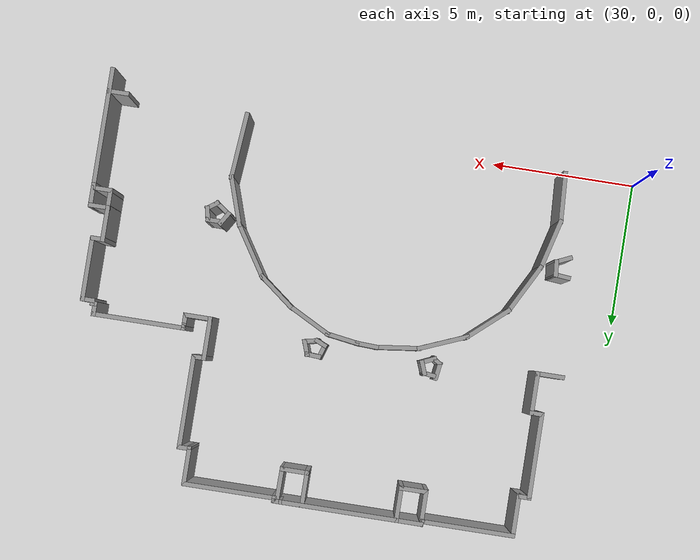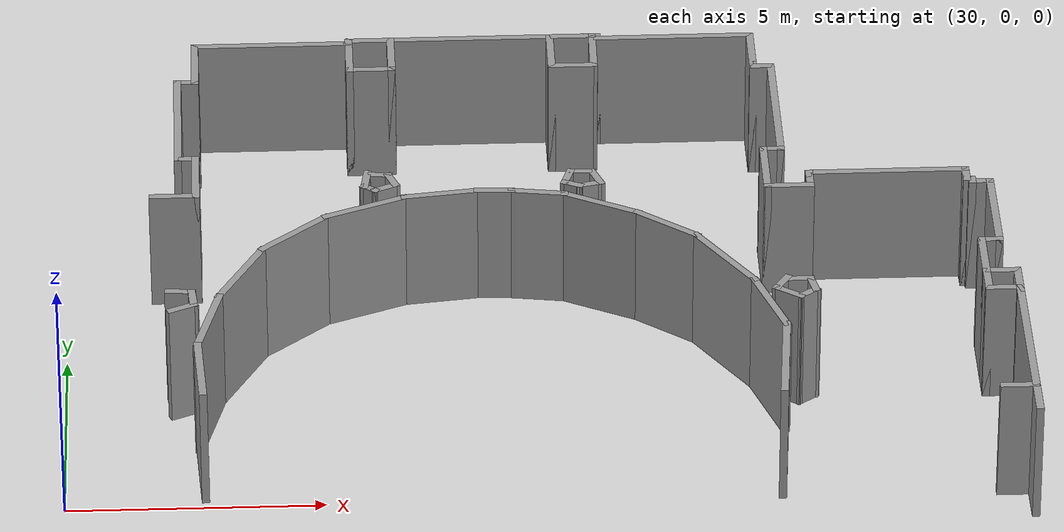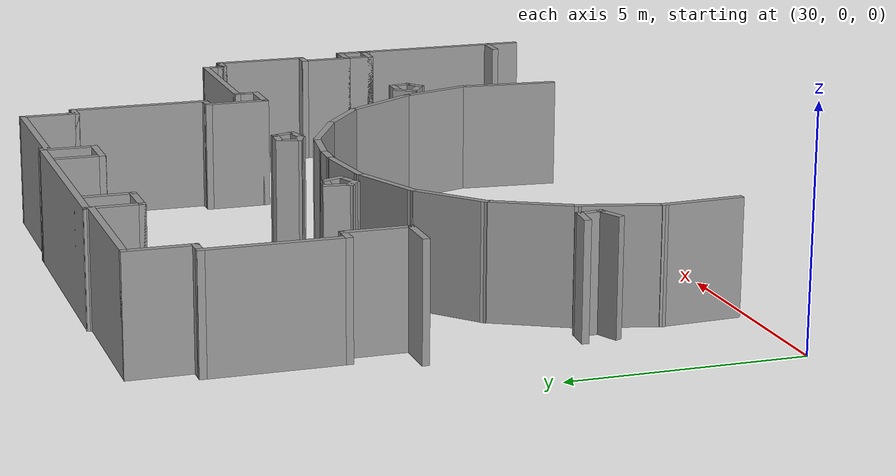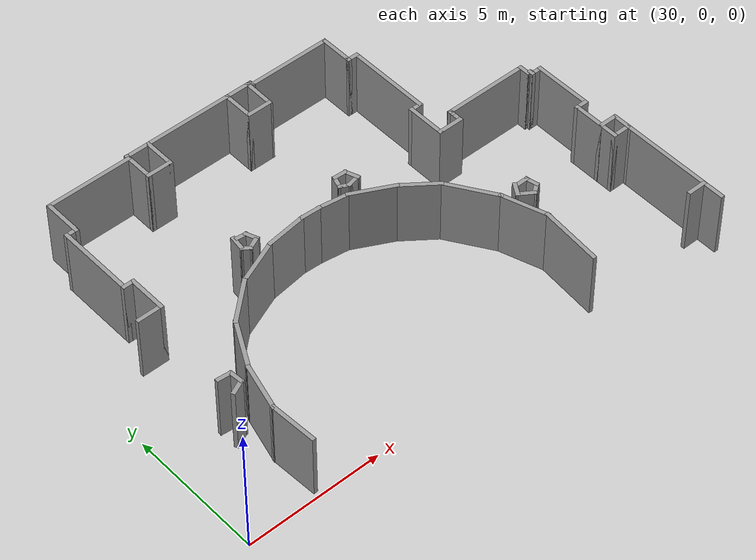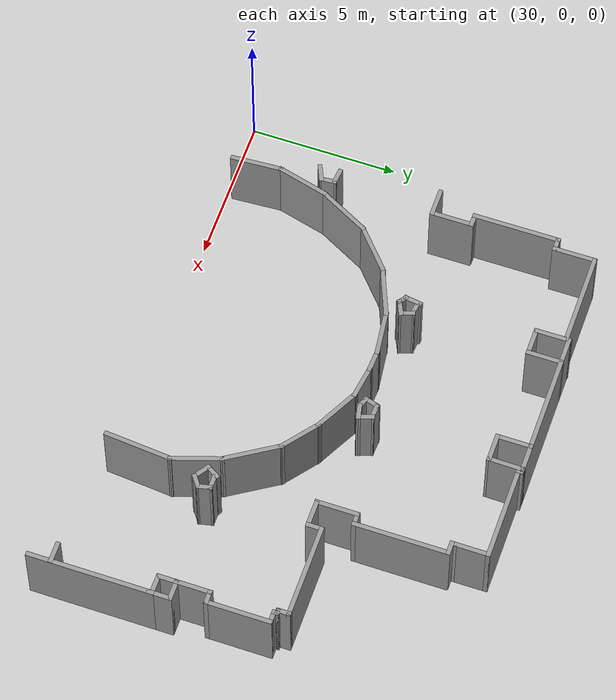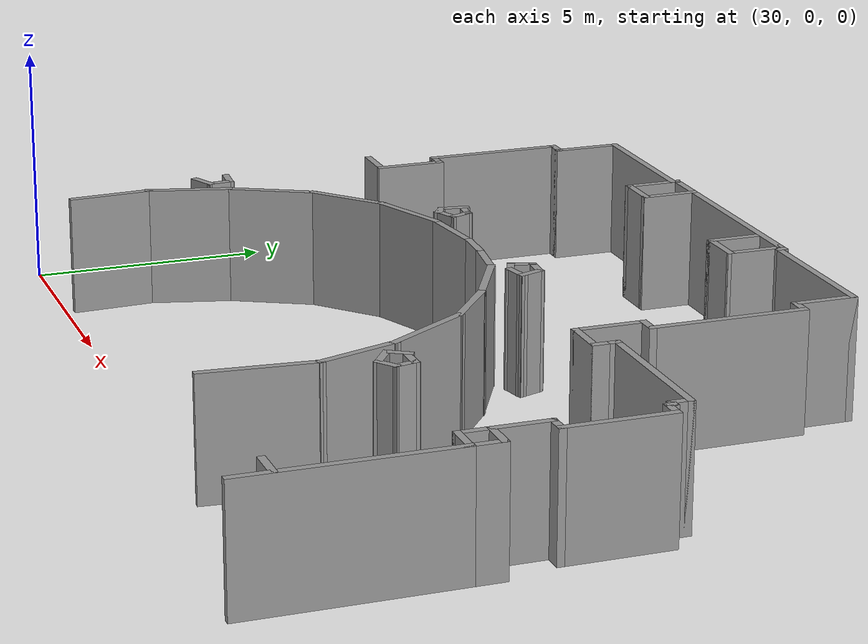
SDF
<sdf version="1.7">
 <model name="TD_n2">
  <pose>-6.42415 -9.1609 0 0 -0 0</pose>
  <link name="Wall_212">
   <collision name="Wall_212_Collision">
    <geometry><box><size>1 0.15 2.5</size></box></geometry>
    <pose>0 0 1.25 0 -0 0</pose>
   </collision>
   <visual name="Wall_212_Visual">
    <pose>0 0 1.25 0 -0 0</pose>
    <geometry><box><size>1 0.15 2.5</size></box></geometry>
    <material>
     <script><uri>file://media/materials/scripts/gazebo.material</uri><name>Gazebo/Grey</name></script>
     <ambient>1 1 1 1</ambient>
    </material>
    <meta><layer>0</layer></meta>
   </visual>
   <pose>38.5823 16.2907 0 0 -0 0</pose>
  </link>
  <link name="Wall_213">
   <collision name="Wall_213_Collision">
    <geometry><box><size>1.5 0.15 2.5</size></box></geometry>
    <pose>0 0 1.25 0 -0 0</pose>
   </collision>
   <visual name="Wall_213_Visual">
    <pose>0 0 1.25 0 -0 0</pose>
    <geometry><box><size>1.5 0.15 2.5</size></box></geometry>
    <material>
     <script><uri>file://media/materials/scripts/gazebo.material</uri><name>Gazebo/Grey</name></script>
     <ambient>1 1 1 1</ambient>
    </material>
    <meta><layer>0</layer></meta>
   </visual>
   <pose>39.0074 16.9657 0 0 -0 1.5708</pose>
  </link>
  <link name="Wall_214">
   <collision name="Wall_214_Collision">
    <geometry><box><size>0.5 0.15 2.5</size></box></geometry>
    <pose>0 0 1.25 0 -0 0</pose>
   </collision>
   <visual name="Wall_214_Visual">
    <pose>0 0 1.25 0 -0 0</pose>
    <geometry><box><size>0.5 0.15 2.5</size></box></geometry>
    <material>
     <script><uri>file://media/materials/scripts/gazebo.material</uri><name>Gazebo/Grey</name></script>
     <ambient>1 1 1 1</ambient>
    </material>
    <meta><layer>0</layer></meta>
   </visual>
   <pose>38.8323 17.6407 0 0 -0 3.14159</pose>
  </link>
  <link name="Wall_215">
   <collision name="Wall_215_Collision">
    <geometry><box><size>3 0.15 2.5</size></box></geometry>
    <pose>0 0 1.25 0 -0 0</pose>
   </collision>
   <visual name="Wall_215_Visual">
    <pose>0 0 1.25 0 -0 0</pose>
    <geometry><box><size>3 0.15 2.5</size></box></geometry>
    <material>
     <script><uri>file://media/materials/scripts/gazebo.material</uri><name>Gazebo/Grey</name></script>
     <ambient>1 1 1 1</ambient>
    </material>
    <meta><layer>0</layer></meta>
   </visual>
   <pose>38.6574 19.0657 0 0 -0 1.5708</pose>
  </link>
  <link name="Wall_216">
   <collision name="Wall_216_Collision">
    <geometry><box><size>0.5 0.15 2.5</size></box></geometry>
    <pose>0 0 1.25 0 -0 0</pose>
   </collision>
   <visual name="Wall_216_Visual">
    <pose>0 0 1.25 0 -0 0</pose>
    <geometry><box><size>0.5 0.15 2.5</size></box></geometry>
    <material>
     <script><uri>file://media/materials/scripts/gazebo.material</uri><name>Gazebo/Grey</name></script>
     <ambient>1 1 1 1</ambient>
    </material>
    <meta><layer>0</layer></meta>
   </visual>
   <pose>38.8323 20.4907 0 0 -0 0</pose>
  </link>
  <link name="Wall_217">
   <collision name="Wall_217_Collision">
    <geometry><box><size>1.5 0.15 2.5</size></box></geometry>
    <pose>0 0 1.25 0 -0 0</pose>
   </collision>
   <visual name="Wall_217_Visual">
    <pose>0 0 1.25 0 -0 0</pose>
    <geometry><box><size>1.5 0.15 2.5</size></box></geometry>
    <material>
     <script><uri>file://media/materials/scripts/gazebo.material</uri><name>Gazebo/Grey</name></script>
     <ambient>1 1 1 1</ambient>
    </material>
    <meta><layer>0</layer></meta>
   </visual>
   <pose>39.0074 21.1657 0 0 -0 1.5708</pose>
  </link>
  <link name="Wall_218">
   <collision name="Wall_218_Collision">
    <geometry><box><size>3.25 0.15 2.5</size></box></geometry>
    <pose>0 0 1.25 0 -0 0</pose>
   </collision>
   <visual name="Wall_218_Visual">
    <pose>0 0 1.25 0 -0 0</pose>
    <geometry><box><size>3.25 0.15 2.5</size></box></geometry>
    <material>
     <script><uri>file://media/materials/scripts/gazebo.material</uri><name>Gazebo/Grey</name></script>
     <ambient>1 1 1 1</ambient>
    </material>
    <meta><layer>0</layer></meta>
   </visual>
   <pose>40.5574 21.8407 0 0 -0 0</pose>
  </link>
  <link name="Wall_219">
   <collision name="Wall_219_Collision">
    <geometry><box><size>0.25 0.15 2.5</size></box></geometry>
    <pose>0 0 1.25 0 -0 0</pose>
   </collision>
   <visual name="Wall_219_Visual">
    <pose>0 0 1.25 0 -0 0</pose>
    <geometry><box><size>0.25 0.15 2.5</size></box></geometry>
    <material>
     <script><uri>file://media/materials/scripts/gazebo.material</uri><name>Gazebo/Grey</name></script>
     <ambient>1 1 1 1</ambient>
    </material>
    <meta><layer>0</layer></meta>
   </visual>
   <pose>42.1203 21.889 0 0 -0 1.309</pose>
  </link>
  <link name="Wall_220">
   <collision name="Wall_220_Collision">
    <geometry><box><size>5 0.15 2.5</size></box></geometry>
    <pose>0 0 1.25 0 -0 0</pose>
   </collision>
   <visual name="Wall_220_Visual">
    <pose>0 0 1.25 0 -0 0</pose>
    <geometry><box><size>5 0.15 2.5</size></box></geometry>
    <material>
     <script><uri>file://media/materials/scripts/gazebo.material</uri><name>Gazebo/Grey</name></script>
     <ambient>1 1 1 1</ambient>
    </material>
    <meta><layer>0</layer></meta>
   </visual>
   <pose>44.5582 21.9373 0 0 -0 0</pose>
  </link>
  <link name="Wall_221">
   <collision name="Wall_221_Collision">
    <geometry><box><size>0.25 0.15 2.5</size></box></geometry>
    <pose>0 0 1.25 0 -0 0</pose>
   </collision>
   <visual name="Wall_221_Visual">
    <pose>0 0 1.25 0 -0 0</pose>
    <geometry><box><size>0.25 0.15 2.5</size></box></geometry>
    <material>
     <script><uri>file://media/materials/scripts/gazebo.material</uri><name>Gazebo/Grey</name></script>
     <ambient>1 1 1 1</ambient>
    </material>
    <meta><layer>0</layer></meta>
   </visual>
   <pose>47.0332 21.9373 0 0 -0 0</pose>
  </link>
  <link name="Wall_222">
   <collision name="Wall_222_Collision">
    <geometry><box><size>0.25 0.15 2.5</size></box></geometry>
    <pose>0 0 1.25 0 -0 0</pose>
   </collision>
   <visual name="Wall_222_Visual">
    <pose>0 0 1.25 0 -0 0</pose>
    <geometry><box><size>0.25 0.15 2.5</size></box></geometry>
    <material>
     <script><uri>file://media/materials/scripts/gazebo.material</uri><name>Gazebo/Grey</name></script>
     <ambient>1 1 1 1</ambient>
    </material>
    <meta><layer>0</layer></meta>
   </visual>
   <pose>47.1332 21.9373 0 0 -0 0</pose>
  </link>
  <link name="Wall_223">
   <collision name="Wall_223_Collision">
    <geometry><box><size>0.25 0.15 2.5</size></box></geometry>
    <pose>0 0 1.25 0 -0 0</pose>
   </collision>
   <visual name="Wall_223_Visual">
    <pose>0 0 1.25 0 -0 0</pose>
    <geometry><box><size>0.25 0.15 2.5</size></box></geometry>
    <material>
     <script><uri>file://media/materials/scripts/gazebo.material</uri><name>Gazebo/Grey</name></script>
     <ambient>1 1 1 1</ambient>
    </material>
    <meta><layer>0</layer></meta>
   </visual>
   <pose>47.1832 21.8873 0 0 -0 -1.5708</pose>
  </link>
  <link name="Wall_224">
   <collision name="Wall_224_Collision">
    <geometry><box><size>3.25 0.15 2.5</size></box></geometry>
    <pose>0 0 1.25 0 -0 0</pose>
   </collision>
   <visual name="Wall_224_Visual">
    <pose>0 0 1.25 0 -0 0</pose>
    <geometry><box><size>3.25 0.15 2.5</size></box></geometry>
    <material>
     <script><uri>file://media/materials/scripts/gazebo.material</uri><name>Gazebo/Grey</name></script>
     <ambient>1 1 1 1</ambient>
    </material>
    <meta><layer>0</layer></meta>
   </visual>
   <pose>48.7332 21.8373 0 0 -0 0</pose>
  </link>
  <link name="Wall_225">
   <collision name="Wall_225_Collision">
    <geometry><box><size>1.25 0.15 2.5</size></box></geometry>
    <pose>0 0 1.25 0 -0 0</pose>
   </collision>
   <visual name="Wall_225_Visual">
    <pose>0 0 1.25 0 -0 0</pose>
    <geometry><box><size>1.25 0.15 2.5</size></box></geometry>
    <material>
     <script><uri>file://media/materials/scripts/gazebo.material</uri><name>Gazebo/Grey</name></script>
     <ambient>1 1 1 1</ambient>
    </material>
    <meta><layer>0</layer></meta>
   </visual>
   <pose>50.2832 21.2873 0 0 -0 -1.5708</pose>
  </link>
  <link name="Wall_226">
   <collision name="Wall_226_Collision">
    <geometry><box><size>0.25 0.15 2.5</size></box></geometry>
    <pose>0 0 1.25 0 -0 0</pose>
   </collision>
   <visual name="Wall_226_Visual">
    <pose>0 0 1.25 0 -0 0</pose>
    <geometry><box><size>0.25 0.15 2.5</size></box></geometry>
    <material>
     <script><uri>file://media/materials/scripts/gazebo.material</uri><name>Gazebo/Grey</name></script>
     <ambient>1 1 1 1</ambient>
    </material>
    <meta><layer>0</layer></meta>
   </visual>
   <pose>50.2832 20.6873 0 0 -0 -1.5708</pose>
  </link>
  <link name="Wall_227">
   <collision name="Wall_227_Collision">
    <geometry><box><size>0.5 0.15 2.5</size></box></geometry>
    <pose>0 0 1.25 0 -0 0</pose>
   </collision>
   <visual name="Wall_227_Visual">
    <pose>0 0 1.25 0 -0 0</pose>
    <geometry><box><size>0.5 0.15 2.5</size></box></geometry>
    <material>
     <script><uri>file://media/materials/scripts/gazebo.material</uri><name>Gazebo/Grey</name></script>
     <ambient>1 1 1 1</ambient>
    </material>
    <meta><layer>0</layer></meta>
   </visual>
   <pose>50.4582 20.6373 0 0 -0 0</pose>
  </link>
  <link name="Wall_228">
   <collision name="Wall_228_Collision">
    <geometry><box><size>3.25 0.15 2.5</size></box></geometry>
    <pose>0 0 1.25 0 -0 0</pose>
   </collision>
   <visual name="Wall_228_Visual">
    <pose>0 0 1.25 0 -0 0</pose>
    <geometry><box><size>3.25 0.15 2.5</size></box></geometry>
    <material>
     <script><uri>file://media/materials/scripts/gazebo.material</uri><name>Gazebo/Grey</name></script>
     <ambient>1 1 1 1</ambient>
    </material>
    <meta><layer>0</layer></meta>
   </visual>
   <pose>50.6332 19.0873 0 0 -0 -1.5708</pose>
  </link>
  <link name="Wall_229">
   <collision name="Wall_229_Collision">
    <geometry><box><size>0.5 0.15 2.5</size></box></geometry>
    <pose>0 0 1.25 0 -0 0</pose>
   </collision>
   <visual name="Wall_229_Visual">
    <pose>0 0 1.25 0 -0 0</pose>
    <geometry><box><size>0.5 0.15 2.5</size></box></geometry>
    <material>
     <script><uri>file://media/materials/scripts/gazebo.material</uri><name>Gazebo/Grey</name></script>
     <ambient>1 1 1 1</ambient>
    </material>
    <meta><layer>0</layer></meta>
   </visual>
   <pose>50.4582 17.5373 0 0 -0 3.14159</pose>
  </link>
  <link name="Wall_230">
   <collision name="Wall_230_Collision">
    <geometry><box><size>1.5 0.15 2.5</size></box></geometry>
    <pose>0 0 1.25 0 -0 0</pose>
   </collision>
   <visual name="Wall_230_Visual">
    <pose>0 0 1.25 0 -0 0</pose>
    <geometry><box><size>1.5 0.15 2.5</size></box></geometry>
    <material>
     <script><uri>file://media/materials/scripts/gazebo.material</uri><name>Gazebo/Grey</name></script>
     <ambient>1 1 1 1</ambient>
    </material>
    <meta><layer>0</layer></meta>
   </visual>
   <pose>50.2832 16.8623 0 0 -0 -1.5708</pose>
  </link>
  <link name="Wall_231">
   <collision name="Wall_231_Collision">
    <geometry><box><size>1 0.15 2.5</size></box></geometry>
    <pose>0 0 1.25 0 -0 0</pose>
   </collision>
   <visual name="Wall_231_Visual">
    <pose>0 0 1.25 0 -0 0</pose>
    <geometry><box><size>1 0.15 2.5</size></box></geometry>
    <material>
     <script><uri>file://media/materials/scripts/gazebo.material</uri><name>Gazebo/Grey</name></script>
     <ambient>1 1 1 1</ambient>
    </material>
    <meta><layer>0</layer></meta>
   </visual>
   <pose>50.7082 16.1873 0 0 -0 0</pose>
  </link>
  <link name="Wall_232">
   <collision name="Wall_232_Collision">
    <geometry><box><size>0.5 0.15 2.5</size></box></geometry>
    <pose>0 0 1.25 0 -0 0</pose>
   </collision>
   <visual name="Wall_232_Visual">
    <pose>0 0 1.25 0 -0 0</pose>
    <geometry><box><size>0.5 0.15 2.5</size></box></geometry>
    <material>
     <script><uri>file://media/materials/scripts/gazebo.material</uri><name>Gazebo/Grey</name></script>
     <ambient>1 1 1 1</ambient>
    </material>
    <meta><layer>0</layer></meta>
   </visual>
   <pose>51.1332 16.3623 0 0 -0 1.5708</pose>
  </link>
  <link name="Wall_233">
   <collision name="Wall_233_Collision">
    <geometry><box><size>0.25 0.15 2.5</size></box></geometry>
    <pose>0 0 1.25 0 -0 0</pose>
   </collision>
   <visual name="Wall_233_Visual">
    <pose>0 0 1.25 0 -0 0</pose>
    <geometry><box><size>0.25 0.15 2.5</size></box></geometry>
    <material>
     <script><uri>file://media/materials/scripts/gazebo.material</uri><name>Gazebo/Grey</name></script>
     <ambient>1 1 1 1</ambient>
    </material>
    <meta><layer>0</layer></meta>
   </visual>
   <pose>51.1332 16.5873 0 0 -0 1.5708</pose>
  </link>
  <link name="Wall_234">
   <collision name="Wall_234_Collision">
    <geometry><box><size>3.25 0.15 2.5</size></box></geometry>
    <pose>0 0 1.25 0 -0 0</pose>
   </collision>
   <visual name="Wall_234_Visual">
    <pose>0 0 1.25 0 -0 0</pose>
    <geometry><box><size>3.25 0.15 2.5</size></box></geometry>
    <material>
     <script><uri>file://media/materials/scripts/gazebo.material</uri><name>Gazebo/Grey</name></script>
     <ambient>1 1 1 1</ambient>
    </material>
    <meta><layer>0</layer></meta>
   </visual>
   <pose>52.6832 16.6373 0 0 -0 0</pose>
  </link>
  <link name="Wall_235">
   <collision name="Wall_235_Collision">
    <geometry><box><size>0.5 0.15 2.5</size></box></geometry>
    <pose>0 0 1.25 0 -0 0</pose>
   </collision>
   <visual name="Wall_235_Visual">
    <pose>0 0 1.25 0 -0 0</pose>
    <geometry><box><size>0.5 0.15 2.5</size></box></geometry>
    <material>
     <script><uri>file://media/materials/scripts/gazebo.material</uri><name>Gazebo/Grey</name></script>
     <ambient>1 1 1 1</ambient>
    </material>
    <meta><layer>0</layer></meta>
   </visual>
   <pose>54.2332 16.4623 0 0 -0 -1.5708</pose>
  </link>
  <link name="Wall_236">
   <collision name="Wall_236_Collision">
    <geometry><box><size>0.25 0.15 2.5</size></box></geometry>
    <pose>0 0 1.25 0 -0 0</pose>
   </collision>
   <visual name="Wall_236_Visual">
    <pose>0 0 1.25 0 -0 0</pose>
    <geometry><box><size>0.25 0.15 2.5</size></box></geometry>
    <material>
     <script><uri>file://media/materials/scripts/gazebo.material</uri><name>Gazebo/Grey</name></script>
     <ambient>1 1 1 1</ambient>
    </material>
    <meta><layer>0</layer></meta>
   </visual>
   <pose>54.2832 16.2873 0 0 -0 0</pose>
  </link>
  <link name="Wall_237">
   <collision name="Wall_237_Collision">
    <geometry><box><size>0.25 0.15 2.5</size></box></geometry>
    <pose>0 0 1.25 0 -0 0</pose>
   </collision>
   <visual name="Wall_237_Visual">
    <pose>0 0 1.25 0 -0 0</pose>
    <geometry><box><size>0.25 0.15 2.5</size></box></geometry>
    <material>
     <script><uri>file://media/materials/scripts/gazebo.material</uri><name>Gazebo/Grey</name></script>
     <ambient>1 1 1 1</ambient>
    </material>
    <meta><layer>0</layer></meta>
   </visual>
   <pose>54.3332 16.2373 0 0 -0 -1.5708</pose>
  </link>
  <link name="Wall_238">
   <collision name="Wall_238_Collision">
    <geometry><box><size>0.5 0.15 2.5</size></box></geometry>
    <pose>0 0 1.25 0 -0 0</pose>
   </collision>
   <visual name="Wall_238_Visual">
    <pose>0 0 1.25 0 -0 0</pose>
    <geometry><box><size>0.5 0.15 2.5</size></box></geometry>
    <material>
     <script><uri>file://media/materials/scripts/gazebo.material</uri><name>Gazebo/Grey</name></script>
     <ambient>1 1 1 1</ambient>
    </material>
    <meta><layer>0</layer></meta>
   </visual>
   <pose>54.5082 16.1873 0 0 -0 0</pose>
  </link>
  <link name="Wall_239">
   <collision name="Wall_239_Collision">
    <geometry><box><size>2.25 0.15 2.5</size></box></geometry>
    <pose>0 0 1.25 0 -0 0</pose>
   </collision>
   <visual name="Wall_239_Visual">
    <pose>0 0 1.25 0 -0 0</pose>
    <geometry><box><size>2.25 0.15 2.5</size></box></geometry>
    <material>
     <script><uri>file://media/materials/scripts/gazebo.material</uri><name>Gazebo/Grey</name></script>
     <ambient>1 1 1 1</ambient>
    </material>
    <meta><layer>0</layer></meta>
   </visual>
   <pose>54.6832 15.1373 0 0 -0 -1.5708</pose>
  </link>
  <link name="Wall_240">
   <collision name="Wall_240_Collision">
    <geometry><box><size>0.5 0.15 2.5</size></box></geometry>
    <pose>0 0 1.25 0 -0 0</pose>
   </collision>
   <visual name="Wall_240_Visual">
    <pose>0 0 1.25 0 -0 0</pose>
    <geometry><box><size>0.5 0.15 2.5</size></box></geometry>
    <material>
     <script><uri>file://media/materials/scripts/gazebo.material</uri><name>Gazebo/Grey</name></script>
     <ambient>1 1 1 1</ambient>
    </material>
    <meta><layer>0</layer></meta>
   </visual>
   <pose>54.5082 14.0873 0 0 -0 3.14159</pose>
  </link>
  <link name="Wall_242">
   <collision name="Wall_242_Collision">
    <geometry><box><size>1.25 0.15 2.5</size></box></geometry>
    <pose>0 0 1.25 0 -0 0</pose>
   </collision>
   <visual name="Wall_242_Visual">
    <pose>0 0 1.25 0 -0 0</pose>
    <geometry><box><size>1.25 0.15 2.5</size></box></geometry>
    <material>
     <script><uri>file://media/materials/scripts/gazebo.material</uri><name>Gazebo/Grey</name></script>
     <ambient>1 1 1 1</ambient>
    </material>
    <meta><layer>0</layer></meta>
   </visual>
   <pose>54.3332 13.5373 0 0 -0 -1.5708</pose>
  </link>
  <link name="Wall_243">
   <collision name="Wall_243_Collision">
    <geometry><box><size>0.75 0.15 2.5</size></box></geometry>
    <pose>0 0 1.25 0 -0 0</pose>
   </collision>
   <visual name="Wall_243_Visual">
    <pose>0 0 1.25 0 -0 0</pose>
    <geometry><box><size>0.75 0.15 2.5</size></box></geometry>
    <material>
     <script><uri>file://media/materials/scripts/gazebo.material</uri><name>Gazebo/Grey</name></script>
     <ambient>1 1 1 1</ambient>
    </material>
    <meta><layer>0</layer></meta>
   </visual>
   <pose>54.6332 12.9873 0 0 -0 0</pose>
  </link>
  <link name="Wall_244">
   <collision name="Wall_244_Collision">
    <geometry><box><size>0.75 0.15 2.5</size></box></geometry>
    <pose>0 0 1.25 0 -0 0</pose>
   </collision>
   <visual name="Wall_244_Visual">
    <pose>0 0 1.25 0 -0 0</pose>
    <geometry><box><size>0.75 0.15 2.5</size></box></geometry>
    <material>
     <script><uri>file://media/materials/scripts/gazebo.material</uri><name>Gazebo/Grey</name></script>
     <ambient>1 1 1 1</ambient>
    </material>
    <meta><layer>0</layer></meta>
   </visual>
   <pose>54.9332 12.6873 0 0 -0 -1.5708</pose>
  </link>
  <link name="Wall_245">
   <collision name="Wall_245_Collision">
    <geometry><box><size>0.25 0.15 2.5</size></box></geometry>
    <pose>0 0 1.25 0 -0 0</pose>
   </collision>
   <visual name="Wall_245_Visual">
    <pose>0 0 1.25 0 -0 0</pose>
    <geometry><box><size>0.25 0.15 2.5</size></box></geometry>
    <material>
     <script><uri>file://media/materials/scripts/gazebo.material</uri><name>Gazebo/Grey</name></script>
     <ambient>1 1 1 1</ambient>
    </material>
    <meta><layer>0</layer></meta>
   </visual>
   <pose>54.9332 12.3373 0 0 -0 -1.5708</pose>
  </link>
  <link name="Wall_247">
   <collision name="Wall_247_Collision">
    <geometry><box><size>4.25 0.15 2.5</size></box></geometry>
    <pose>0 0 1.25 0 -0 0</pose>
   </collision>
   <visual name="Wall_247_Visual">
    <pose>0 0 1.25 0 -0 0</pose>
    <geometry><box><size>4.25 0.15 2.5</size></box></geometry>
    <material>
     <script><uri>file://media/materials/scripts/gazebo.material</uri><name>Gazebo/Grey</name></script>
     <ambient>1 1 1 1</ambient>
    </material>
    <meta><layer>0</layer></meta>
   </visual>
   <pose>54.9332 10.3373 0 0 -0 -1.5708</pose>
  </link>
  <link name="Wall_496">
   <collision name="Wall_496_Collision">
    <geometry><box><size>1.25 0.15 2.5</size></box></geometry>
    <pose>0 0 1.25 0 -0 0</pose>
   </collision>
   <visual name="Wall_496_Visual">
    <pose>0 0 1.25 0 -0 0</pose>
    <geometry><box><size>1.25 0.15 2.5</size></box></geometry>
    <material>
     <script><uri>file://media/materials/scripts/gazebo.material</uri><name>Gazebo/Grey</name></script>
     <ambient>1 1 1 1</ambient>
    </material>
    <meta><layer>0</layer></meta>
   </visual>
   <pose>42.1332 21.3873 0 0 -0 -1.5708</pose>
  </link>
  <link name="Wall_497">
   <collision name="Wall_497_Collision">
    <geometry><box><size>1 0.15 2.5</size></box></geometry>
    <pose>0 0 1.25 0 -0 0</pose>
   </collision>
   <visual name="Wall_497_Visual">
    <pose>0 0 1.25 0 -0 0</pose>
    <geometry><box><size>1 0.15 2.5</size></box></geometry>
    <material>
     <script><uri>file://media/materials/scripts/gazebo.material</uri><name>Gazebo/Grey</name></script>
     <ambient>1 1 1 1</ambient>
    </material>
    <meta><layer>0</layer></meta>
   </visual>
   <pose>42.5582 20.8373 0 0 -0 0</pose>
  </link>
  <link name="Wall_498">
   <collision name="Wall_498_Collision">
    <geometry><box><size>1.25 0.15 2.5</size></box></geometry>
    <pose>0 0 1.25 0 -0 0</pose>
   </collision>
   <visual name="Wall_498_Visual">
    <pose>0 0 1.25 0 -0 0</pose>
    <geometry><box><size>1.25 0.15 2.5</size></box></geometry>
    <material>
     <script><uri>file://media/materials/scripts/gazebo.material</uri><name>Gazebo/Grey</name></script>
     <ambient>1 1 1 1</ambient>
    </material>
    <meta><layer>0</layer></meta>
   </visual>
   <pose>42.9832 21.3873 0 0 -0 1.5708</pose>
  </link>
  <link name="Wall_500">
   <collision name="Wall_500_Collision">
    <geometry><box><size>1.25 0.15 2.5</size></box></geometry>
    <pose>0 0 1.25 0 -0 0</pose>
   </collision>
   <visual name="Wall_500_Visual">
    <pose>0 0 1.25 0 -0 0</pose>
    <geometry><box><size>1.25 0.15 2.5</size></box></geometry>
    <material>
     <script><uri>file://media/materials/scripts/gazebo.material</uri><name>Gazebo/Grey</name></script>
     <ambient>1 1 1 1</ambient>
    </material>
    <meta><layer>0</layer></meta>
   </visual>
   <pose>46.2176 21.3775 0 0 -0 -1.5708</pose>
  </link>
  <link name="Wall_501">
   <collision name="Wall_501_Collision">
    <geometry><box><size>1 0.15 2.5</size></box></geometry>
    <pose>0 0 1.25 0 -0 0</pose>
   </collision>
   <visual name="Wall_501_Visual">
    <pose>0 0 1.25 0 -0 0</pose>
    <geometry><box><size>1 0.15 2.5</size></box></geometry>
    <material>
     <script><uri>file://media/materials/scripts/gazebo.material</uri><name>Gazebo/Grey</name></script>
     <ambient>1 1 1 1</ambient>
    </material>
    <meta><layer>0</layer></meta>
   </visual>
   <pose>46.6426 20.8275 0 0 -0 0</pose>
  </link>
  <link name="Wall_502">
   <collision name="Wall_502_Collision">
    <geometry><box><size>1.25996 0.15 2.5</size></box></geometry>
    <pose>0 0 1.25 0 -0 0</pose>
   </collision>
   <visual name="Wall_502_Visual">
    <pose>0 0 1.25 0 -0 0</pose>
    <geometry><box><size>1.25996 0.15 2.5</size></box></geometry>
    <material>
     <script><uri>file://media/materials/scripts/gazebo.material</uri><name>Gazebo/Grey</name></script>
     <ambient>1 1 1 1</ambient>
    </material>
    <meta><layer>0</layer></meta>
   </visual>
   <pose>47.0754 21.3824 0 0 -0 1.55669</pose>
  </link>
  <link name="Wall_504">
   <collision name="Wall_504_Collision">
    <geometry><box><size>0.75 0.15 2.5</size></box></geometry>
    <pose>0 0 1.25 0 -0 0</pose>
   </collision>
   <visual name="Wall_504_Visual">
    <pose>0 0 1.25 0 -0 0</pose>
    <geometry><box><size>0.75 0.15 2.5</size></box></geometry>
    <material>
     <script><uri>file://media/materials/scripts/gazebo.material</uri><name>Gazebo/Grey</name></script>
     <ambient>1 1 1 1</ambient>
    </material>
    <meta><layer>0</layer></meta>
   </visual>
   <pose>54.3332 12.6873 0 0 -0 -1.5708</pose>
  </link>
  <link name="Wall_505">
   <collision name="Wall_505_Collision">
    <geometry><box><size>0.75 0.15 2.5</size></box></geometry>
    <pose>0 0 1.25 0 -0 0</pose>
   </collision>
   <visual name="Wall_505_Visual">
    <pose>0 0 1.25 0 -0 0</pose>
    <geometry><box><size>0.75 0.15 2.5</size></box></geometry>
    <material>
     <script><uri>file://media/materials/scripts/gazebo.material</uri><name>Gazebo/Grey</name></script>
     <ambient>1 1 1 1</ambient>
    </material>
    <meta><layer>0</layer></meta>
   </visual>
   <pose>54.6332 12.3873 0 0 -0 0</pose>
  </link>
  <link name="Wall_507">
   <collision name="Wall_507_Collision">
    <geometry><box><size>0.75 0.15 2.5</size></box></geometry>
    <pose>0 0 1.25 0 -0 0</pose>
   </collision>
   <visual name="Wall_507_Visual">
    <pose>0 0 1.25 0 -0 0</pose>
    <geometry><box><size>0.75 0.15 2.5</size></box></geometry>
    <material>
     <script><uri>file://media/materials/scripts/gazebo.material</uri><name>Gazebo/Grey</name></script>
     <ambient>1 1 1 1</ambient>
    </material>
    <meta><layer>0</layer></meta>
   </visual>
   <pose>54.6195 9.03485 0 0 -0 3.14159</pose>
  </link>
  <link name="Wall_529">
   <collision name="Wall_529_Collision">
    <geometry><box><size>1.59941 0.15 2.5</size></box></geometry>
    <pose>0 0 1.25 0 -0 0</pose>
   </collision>
   <visual name="Wall_529_Visual">
    <pose>0 0 1.25 0 -0 0</pose>
    <geometry><box><size>1.59941 0.15 2.5</size></box></geometry>
    <material>
     <script><uri>file://media/materials/scripts/gazebo.material</uri><name>Gazebo/Grey</name></script>
     <ambient>1 1 1 1</ambient>
    </material>
    <meta><layer>0</layer></meta>
   </visual>
   <pose>43.8349 16.1636 0 0 -0 -3.01462</pose>
  </link>
  <link name="Wall_530">
   <collision name="Wall_530_Collision">
    <geometry><box><size>1.83718 0.15 2.5</size></box></geometry>
    <pose>0 0 1.25 0 -0 0</pose>
   </collision>
   <visual name="Wall_530_Visual">
    <pose>0 0 1.25 0 -0 0</pose>
    <geometry><box><size>1.83718 0.15 2.5</size></box></geometry>
    <material>
     <script><uri>file://media/materials/scripts/gazebo.material</uri><name>Gazebo/Grey</name></script>
     <ambient>1 1 1 1</ambient>
    </material>
    <meta><layer>0</layer></meta>
   </visual>
   <pose>42.336 15.7506 0 0 -0 -2.75099</pose>
  </link>
  <link name="Wall_531">
   <collision name="Wall_531_Collision">
    <geometry><box><size>1.81906 0.15 2.5</size></box></geometry>
    <pose>0 0 1.25 0 -0 0</pose>
   </collision>
   <visual name="Wall_531_Visual">
    <pose>0 0 1.25 0 -0 0</pose>
    <geometry><box><size>1.81906 0.15 2.5</size></box></geometry>
    <material>
     <script><uri>file://media/materials/scripts/gazebo.material</uri><name>Gazebo/Grey</name></script>
     <ambient>1 1 1 1</ambient>
    </material>
    <meta><layer>0</layer></meta>
   </visual>
   <pose>40.9289 14.8788 0 0 -0 -2.42104</pose>
  </link>
  <link name="Wall_533">
   <collision name="Wall_533_Collision">
    <geometry><box><size>1.98363 0.15 2.5</size></box></geometry>
    <pose>0 0 1.25 0 -0 0</pose>
   </collision>
   <visual name="Wall_533_Visual">
    <pose>0 0 1.25 0 -0 0</pose>
    <geometry><box><size>1.98363 0.15 2.5</size></box></geometry>
    <material>
     <script><uri>file://media/materials/scripts/gazebo.material</uri><name>Gazebo/Grey</name></script>
     <ambient>1 1 1 1</ambient>
    </material>
    <meta><layer>0</layer></meta>
   </visual>
   <pose>39.8735 13.5175 0 0 -0 -2.05683</pose>
  </link>
  <link name="Wall_534">
   <collision name="Wall_534_Collision">
    <geometry><box><size>1.85648 0.15 2.5</size></box></geometry>
    <pose>0 0 1.25 0 -0 0</pose>
   </collision>
   <visual name="Wall_534_Visual">
    <pose>0 0 1.25 0 -0 0</pose>
    <geometry><box><size>1.85648 0.15 2.5</size></box></geometry>
    <material>
     <script><uri>file://media/materials/scripts/gazebo.material</uri><name>Gazebo/Grey</name></script>
     <ambient>1 1 1 1</ambient>
    </material>
    <meta><layer>0</layer></meta>
   </visual>
   <pose>39.2311 11.8809 0 0 -0 -1.82447</pose>
  </link>
  <link name="Wall_535">
   <collision name="Wall_535_Collision">
    <geometry><box><size>1.80442 0.15 2.5</size></box></geometry>
    <pose>0 0 1.25 0 -0 0</pose>
   </collision>
   <visual name="Wall_535_Visual">
    <pose>0 0 1.25 0 -0 0</pose>
    <geometry><box><size>1.80442 0.15 2.5</size></box></geometry>
    <material>
     <script><uri>file://media/materials/scripts/gazebo.material</uri><name>Gazebo/Grey</name></script>
     <ambient>1 1 1 1</ambient>
    </material>
    <meta><layer>0</layer></meta>
   </visual>
   <pose>39.0629 10.2291 0 0 -0 -1.5153</pose>
  </link>
  <link name="Wall_545">
   <collision name="Wall_545_Collision">
    <geometry><box><size>2.36013 0.15 2.5</size></box></geometry>
    <pose>0 0 1.25 0 -0 0</pose>
   </collision>
   <visual name="Wall_545_Visual">
    <pose>0 0 1.25 0 -0 0</pose>
    <geometry><box><size>2.36013 0.15 2.5</size></box></geometry>
    <material>
     <script><uri>file://media/materials/scripts/gazebo.material</uri><name>Gazebo/Grey</name></script>
     <ambient>1 1 1 1</ambient>
    </material>
    <meta><layer>0</layer></meta>
   </visual>
   <pose>50.2436 10.1985 0 0 -0 1.48765</pose>
  </link>
  <link name="Wall_546">
   <collision name="Wall_546_Collision">
    <geometry><box><size>1.79449 0.15 2.5</size></box></geometry>
    <pose>0 0 1.25 0 -0 0</pose>
   </collision>
   <visual name="Wall_546_Visual">
    <pose>0 0 1.25 0 -0 0</pose>
    <geometry><box><size>1.79449 0.15 2.5</size></box></geometry>
    <material>
     <script><uri>file://media/materials/scripts/gazebo.material</uri><name>Gazebo/Grey</name></script>
     <ambient>1 1 1 1</ambient>
    </material>
    <meta><layer>0</layer></meta>
   </visual>
   <pose>50.0754 12.0798 0 0 -0 1.89255</pose>
  </link>
  <link name="Wall_547">
   <collision name="Wall_547_Collision">
    <geometry><box><size>2.07621 0.15 2.5</size></box></geometry>
    <pose>0 0 1.25 0 -0 0</pose>
   </collision>
   <visual name="Wall_547_Visual">
    <pose>0 0 1.25 0 -0 0</pose>
    <geometry><box><size>2.07621 0.15 2.5</size></box></geometry>
    <material>
     <script><uri>file://media/materials/scripts/gazebo.material</uri><name>Gazebo/Grey</name></script>
     <ambient>1 1 1 1</ambient>
    </material>
    <meta><layer>0</layer></meta>
   </visual>
   <pose>49.2953 13.6705 0 0 -0 2.14118</pose>
  </link>
  <link name="Wall_548">
   <collision name="Wall_548_Collision">
    <geometry><box><size>1.54513 0.15 2.5</size></box></geometry>
    <pose>0 0 1.25 0 -0 0</pose>
   </collision>
   <visual name="Wall_548_Visual">
    <pose>0 0 1.25 0 -0 0</pose>
    <geometry><box><size>1.54513 0.15 2.5</size></box></geometry>
    <material>
     <script><uri>file://media/materials/scripts/gazebo.material</uri><name>Gazebo/Grey</name></script>
     <ambient>1 1 1 1</ambient>
    </material>
    <meta><layer>0</layer></meta>
   </visual>
   <pose>48.2246 14.9094 0 0 -0 2.48055</pose>
  </link>
  <link name="Wall_549">
   <collision name="Wall_549_Collision">
    <geometry><box><size>1.73716 0.15 2.5</size></box></geometry>
    <pose>0 0 1.25 0 -0 0</pose>
   </collision>
   <visual name="Wall_549_Visual">
    <pose>0 0 1.25 0 -0 0</pose>
    <geometry><box><size>1.73716 0.15 2.5</size></box></geometry>
    <material>
     <script><uri>file://media/materials/scripts/gazebo.material</uri><name>Gazebo/Grey</name></script>
     <ambient>1 1 1 1</ambient>
    </material>
    <meta><layer>0</layer></meta>
   </visual>
   <pose>46.9704 15.7047 0 0 -0 2.66071</pose>
  </link>
  <link name="Wall_550">
   <collision name="Wall_550_Collision">
    <geometry><box><size>1.20125 0.15 2.5</size></box></geometry>
    <pose>0 0 1.25 0 -0 0</pose>
   </collision>
   <visual name="Wall_550_Visual">
    <pose>0 0 1.25 0 -0 0</pose>
    <geometry><box><size>1.20125 0.15 2.5</size></box></geometry>
    <material>
     <script><uri>file://media/materials/scripts/gazebo.material</uri><name>Gazebo/Grey</name></script>
     <ambient>1 1 1 1</ambient>
    </material>
    <meta><layer>0</layer></meta>
   </visual>
   <pose>45.7468 16.1483 0 0 -0 2.99558</pose>
  </link>
  <link name="Wall_551">
   <collision name="Wall_551_Collision">
    <geometry><box><size>0.82368 0.15 2.5</size></box></geometry>
    <pose>0 0 1.25 0 -0 0</pose>
   </collision>
   <visual name="Wall_551_Visual">
    <pose>0 0 1.25 0 -0 0</pose>
    <geometry><box><size>0.82368 0.15 2.5</size></box></geometry>
    <material>
     <script><uri>file://media/materials/scripts/gazebo.material</uri><name>Gazebo/Grey</name></script>
     <ambient>1 1 1 1</ambient>
    </material>
    <meta><layer>0</layer></meta>
   </visual>
   <pose>44.8903 16.24 0 0 -0 3.09617</pose>
  </link>
  <link name="Wall_553">
   <collision name="Wall_553_Collision">
    <geometry><box><size>0.473843 0.15 2.5</size></box></geometry>
    <pose>0 0 1.25 0 -0 0</pose>
   </collision>
   <visual name="Wall_553_Visual">
    <pose>0 0 1.25 0 -0 0</pose>
    <geometry><box><size>0.473843 0.15 2.5</size></box></geometry>
    <material>
     <script><uri>file://media/materials/scripts/gazebo.material</uri><name>Gazebo/Grey</name></script>
     <ambient>1 1 1 1</ambient>
    </material>
    <meta><layer>0</layer></meta>
   </visual>
   <pose>42.6475 16.8973 0 0 -0 -0.106736</pose>
  </link>
  <link name="Wall_554">
   <collision name="Wall_554_Collision">
    <geometry><box><size>0.532278 0.15 2.5</size></box></geometry>
    <pose>0 0 1.25 0 -0 0</pose>
   </collision>
   <visual name="Wall_554_Visual">
    <pose>0 0 1.25 0 -0 0</pose>
    <geometry><box><size>0.532278 0.15 2.5</size></box></geometry>
    <material>
     <script><uri>file://media/materials/scripts/gazebo.material</uri><name>Gazebo/Grey</name></script>
     <ambient>1 1 1 1</ambient>
    </material>
    <meta><layer>0</layer></meta>
   </visual>
   <pose>42.8775 16.7018 0 0 -0 -1.20146</pose>
  </link>
  <link name="Wall_555">
   <collision name="Wall_555_Collision">
    <geometry><box><size>0.592563 0.15 2.5</size></box></geometry>
    <pose>0 0 1.25 0 -0 0</pose>
   </collision>
   <visual name="Wall_555_Visual">
    <pose>0 0 1.25 0 -0 0</pose>
    <geometry><box><size>0.592563 0.15 2.5</size></box></geometry>
    <material>
     <script><uri>file://media/materials/scripts/gazebo.material</uri><name>Gazebo/Grey</name></script>
     <ambient>1 1 1 1</ambient>
    </material>
    <meta><layer>0</layer></meta>
   </visual>
   <pose>42.7452 16.4316 0 0 -0 -2.71281</pose>
  </link>
  <link name="Wall_556">
   <collision name="Wall_556_Collision">
    <geometry><box><size>0.405341 0.15 2.5</size></box></geometry>
    <pose>0 0 1.25 0 -0 0</pose>
   </collision>
   <visual name="Wall_556_Visual">
    <pose>0 0 1.25 0 -0 0</pose>
    <geometry><box><size>0.405341 0.15 2.5</size></box></geometry>
    <material>
     <script><uri>file://media/materials/scripts/gazebo.material</uri><name>Gazebo/Grey</name></script>
     <ambient>1 1 1 1</ambient>
    </material>
    <meta><layer>0</layer></meta>
   </visual>
   <pose>42.4405 16.4143 0 0 -0 2.51611</pose>
  </link>
  <link name="Wall_557">
   <collision name="Wall_557_Collision">
    <geometry><box><size>0.649291 0.15 2.5</size></box></geometry>
    <pose>0 0 1.25 0 -0 0</pose>
   </collision>
   <visual name="Wall_557_Visual">
    <pose>0 0 1.25 0 -0 0</pose>
    <geometry><box><size>0.649291 0.15 2.5</size></box></geometry>
    <material>
     <script><uri>file://media/materials/scripts/gazebo.material</uri><name>Gazebo/Grey</name></script>
     <ambient>1 1 1 1</ambient>
    </material>
    <meta><layer>0</layer></meta>
   </visual>
   <pose>42.3715 16.7363 0 0 -0 1.43216</pose>
  </link>
  <link name="Wall_559">
   <collision name="Wall_559_Collision">
    <geometry><box><size>0.553157 0.15 2.5</size></box></geometry>
    <pose>0 0 1.25 0 -0 0</pose>
   </collision>
   <visual name="Wall_559_Visual">
    <pose>0 0 1.25 0 -0 0</pose>
    <geometry><box><size>0.553157 0.15 2.5</size></box></geometry>
    <material>
     <script><uri>file://media/materials/scripts/gazebo.material</uri><name>Gazebo/Grey</name></script>
     <ambient>1 1 1 1</ambient>
    </material>
    <meta><layer>0</layer></meta>
   </visual>
   <pose>46.6437 16.8686 0 0 -0 -0.057081</pose>
  </link>
  <link name="Wall_560">
   <collision name="Wall_560_Collision">
    <geometry><box><size>0.590166 0.15 2.5</size></box></geometry>
    <pose>0 0 1.25 0 -0 0</pose>
   </collision>
   <visual name="Wall_560_Visual">
    <pose>0 0 1.25 0 -0 0</pose>
    <geometry><box><size>0.590166 0.15 2.5</size></box></geometry>
    <material>
     <script><uri>file://media/materials/scripts/gazebo.material</uri><name>Gazebo/Grey</name></script>
     <ambient>1 1 1 1</ambient>
    </material>
    <meta><layer>0</layer></meta>
   </visual>
   <pose>46.9197 16.6501 0 0 -0 -1.22426</pose>
  </link>
  <link name="Wall_561">
   <collision name="Wall_561_Collision">
    <geometry><box><size>0.574099 0.15 2.5</size></box></geometry>
    <pose>0 0 1.25 0 -0 0</pose>
   </collision>
   <visual name="Wall_561_Visual">
    <pose>0 0 1.25 0 -0 0</pose>
    <geometry><box><size>0.574099 0.15 2.5</size></box></geometry>
    <material>
     <script><uri>file://media/materials/scripts/gazebo.material</uri><name>Gazebo/Grey</name></script>
     <ambient>1 1 1 1</ambient>
    </material>
    <meta><layer>0</layer></meta>
   </visual>
   <pose>46.7875 16.3971 0 0 -0 -2.92292</pose>
  </link>
  <link name="Wall_562">
   <collision name="Wall_562_Collision">
    <geometry><box><size>0.4641 0.15 2.5</size></box></geometry>
    <pose>0 0 1.25 0 -0 0</pose>
   </collision>
   <visual name="Wall_562_Visual">
    <pose>0 0 1.25 0 -0 0</pose>
    <geometry><box><size>0.4641 0.15 2.5</size></box></geometry>
    <material>
     <script><uri>file://media/materials/scripts/gazebo.material</uri><name>Gazebo/Grey</name></script>
     <ambient>1 1 1 1</ambient>
    </material>
    <meta><layer>0</layer></meta>
   </visual>
   <pose>46.4367 16.4143 0 0 -0 2.72709</pose>
  </link>
  <link name="Wall_563">
   <collision name="Wall_563_Collision">
    <geometry><box><size>0.571911 0.15 2.5</size></box></geometry>
    <pose>0 0 1.25 0 -0 0</pose>
   </collision>
   <visual name="Wall_563_Visual">
    <pose>0 0 1.25 0 -0 0</pose>
    <geometry><box><size>0.571911 0.15 2.5</size></box></geometry>
    <material>
     <script><uri>file://media/materials/scripts/gazebo.material</uri><name>Gazebo/Grey</name></script>
     <ambient>1 1 1 1</ambient>
    </material>
    <meta><layer>0</layer></meta>
   </visual>
   <pose>46.3562 16.6788 0 0 -0 1.26629</pose>
  </link>
  <link name="Wall_565">
   <collision name="Wall_565_Collision">
    <geometry><box><size>0.594323 0.15 2.5</size></box></geometry>
    <pose>0 0 1.25 0 -0 0</pose>
   </collision>
   <visual name="Wall_565_Visual">
    <pose>0 0 1.25 0 -0 0</pose>
    <geometry><box><size>0.594323 0.15 2.5</size></box></geometry>
    <material>
     <script><uri>file://media/materials/scripts/gazebo.material</uri><name>Gazebo/Grey</name></script>
     <ambient>1 1 1 1</ambient>
    </material>
    <meta><layer>0</layer></meta>
   </visual>
   <pose>38.6902 12.8977 0 0 -0 -0.09066</pose>
  </link>
  <link name="Wall_566">
   <collision name="Wall_566_Collision">
    <geometry><box><size>0.594323 0.15 2.5</size></box></geometry>
    <pose>0 0 1.25 0 -0 0</pose>
   </collision>
   <visual name="Wall_566_Visual">
    <pose>0 0 1.25 0 -0 0</pose>
    <geometry><box><size>0.594323 0.15 2.5</size></box></geometry>
    <material>
     <script><uri>file://media/materials/scripts/gazebo.material</uri><name>Gazebo/Grey</name></script>
     <ambient>1 1 1 1</ambient>
    </material>
    <meta><layer>0</layer></meta>
   </visual>
   <pose>38.9315 12.6563 0 0 -0 -1.48014</pose>
  </link>
  <link name="Wall_567">
   <collision name="Wall_567_Collision">
    <geometry><box><size>0.636066 0.15 2.5</size></box></geometry>
    <pose>0 0 1.25 0 -0 0</pose>
   </collision>
   <visual name="Wall_567_Visual">
    <pose>0 0 1.25 0 -0 0</pose>
    <geometry><box><size>0.636066 0.15 2.5</size></box></geometry>
    <material>
     <script><uri>file://media/materials/scripts/gazebo.material</uri><name>Gazebo/Grey</name></script>
     <ambient>1 1 1 1</ambient>
    </material>
    <meta><layer>0</layer></meta>
   </visual>
   <pose>38.7304 12.3345 0 0 -0 -2.71496</pose>
  </link>
  <link name="Wall_571">
   <collision name="Wall_571_Collision">
    <geometry><box><size>0.552271 0.15 2.5</size></box></geometry>
    <pose>0 0 1.25 0 -0 0</pose>
   </collision>
   <visual name="Wall_571_Visual">
    <pose>0 0 1.25 0 -0 0</pose>
    <geometry><box><size>0.552271 0.15 2.5</size></box></geometry>
    <material>
     <script><uri>file://media/materials/scripts/gazebo.material</uri><name>Gazebo/Grey</name></script>
     <ambient>1 1 1 1</ambient>
    </material>
    <meta><layer>0</layer></meta>
   </visual>
   <pose>50.698 12.8574 0 0 -0 0</pose>
  </link>
  <link name="Wall_572">
   <collision name="Wall_572_Collision">
    <geometry><box><size>0.540535 0.15 2.5</size></box></geometry>
    <pose>0 0 1.25 0 -0 0</pose>
   </collision>
   <visual name="Wall_572_Visual">
    <pose>0 0 1.25 0 -0 0</pose>
    <geometry><box><size>0.540535 0.15 2.5</size></box></geometry>
    <material>
     <script><uri>file://media/materials/scripts/gazebo.material</uri><name>Gazebo/Grey</name></script>
     <ambient>1 1 1 1</ambient>
    </material>
    <meta><layer>0</layer></meta>
   </visual>
   <pose>50.9393 12.6664 0 0 -0 -1.3633</pose>
  </link>
  <link name="Wall_573">
   <collision name="Wall_573_Collision">
    <geometry><box><size>0.524134 0.15 2.5</size></box></geometry>
    <pose>0 0 1.25 0 -0 0</pose>
   </collision>
   <visual name="Wall_573_Visual">
    <pose>0 0 1.25 0 -0 0</pose>
    <geometry><box><size>0.524134 0.15 2.5</size></box></geometry>
    <material>
     <script><uri>file://media/materials/scripts/gazebo.material</uri><name>Gazebo/Grey</name></script>
     <ambient>1 1 1 1</ambient>
    </material>
    <meta><layer>0</layer></meta>
   </visual>
   <pose>50.8287 12.3647 0 0 -0 -2.50884</pose>
  </link>
  <link name="Wall_574">
   <collision name="Wall_574_Collision">
    <geometry><box><size>0.685565 0.15 2.5</size></box></geometry>
    <pose>0 0 1.25 0 -0 0</pose>
   </collision>
   <visual name="Wall_574_Visual">
    <pose>0 0 1.25 0 -0 0</pose>
    <geometry><box><size>0.685565 0.15 2.5</size></box></geometry>
    <material>
     <script><uri>file://media/materials/scripts/gazebo.material</uri><name>Gazebo/Grey</name></script>
     <ambient>1 1 1 1</ambient>
    </material>
    <meta><layer>0</layer></meta>
   </visual>
   <pose>50.4566 12.4049 0 0 -0 2.54317</pose>
  </link>
  <link name="Wall_575">
   <collision name="Wall_575_Collision">
    <geometry><box><size>0.574296 0.15 2.5</size></box></geometry>
    <pose>0 0 1.25 0 -0 0</pose>
   </collision>
   <visual name="Wall_575_Visual">
    <pose>0 0 1.25 0 -0 0</pose>
    <geometry><box><size>0.574296 0.15 2.5</size></box></geometry>
    <material>
     <script><uri>file://media/materials/scripts/gazebo.material</uri><name>Gazebo/Grey</name></script>
     <ambient>1 1 1 1</ambient>
    </material>
    <meta><layer>0</layer></meta>
   </visual>
   <pose>50.346 12.7368 0 0 -0 1.02225</pose>
  </link>
  <static>1</static>
 </model>
</sdf>
